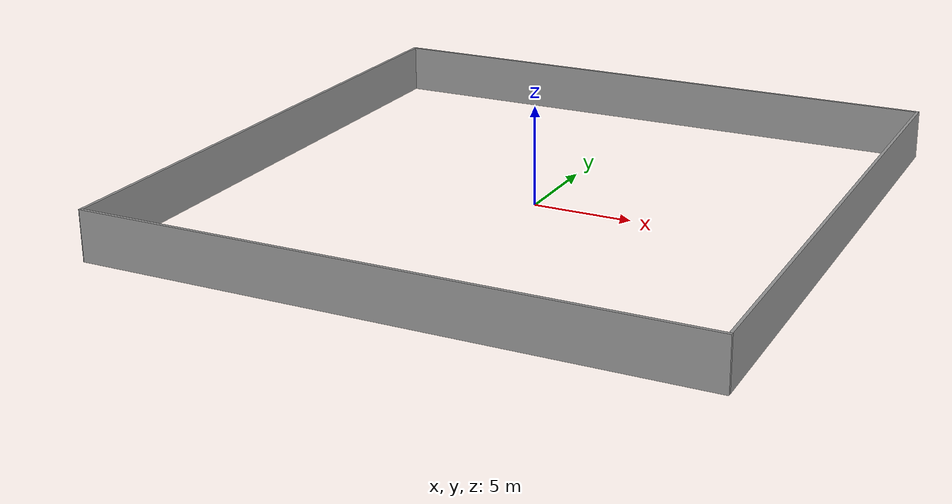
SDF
<?xml version='1.0'?>
<sdf version='1.7'>
  <model name='map'>
    <pose>0 0 0 0 -0 0</pose>
    <link name='Wall_0'>
      <collision name='Wall_0_Collision'>
        <geometry>
          <box>
            <size>30.15 0.15 2.5</size>
          </box>
        </geometry>
        <pose>0 0 1.25 0 -0 0</pose>
      </collision>
      <visual name='Wall_0_Visual'>
        <pose>0 0 1.25 0 -0 0</pose>
        <geometry>
          <box>
            <size>30.15 0.15 2.5</size>
          </box>
        </geometry>
        <material>
          <script>
            <uri>file://media/materials/scripts/gazebo.material</uri>
            <name>Gazebo/Grey</name>
          </script>
          <ambient>1 1 1 1</ambient>
        </material>
        <meta>
          <layer>0</layer>
        </meta>
      </visual>
      <pose>-15 0 0 0 -0 1.5708</pose>
    </link>
    <link name='Wall_1'>
      <collision name='Wall_1_Collision'>
        <geometry>
          <box>
            <size>30.15 0.15 2.5</size>
          </box>
        </geometry>
        <pose>0 0 1.25 0 -0 0</pose>
      </collision>
      <visual name='Wall_1_Visual'>
        <pose>0 0 1.25 0 -0 0</pose>
        <geometry>
          <box>
            <size>30.15 0.15 2.5</size>
          </box>
        </geometry>
        <material>
          <script>
            <uri>file://media/materials/scripts/gazebo.material</uri>
            <name>Gazebo/Grey</name>
          </script>
          <ambient>1 1 1 1</ambient>
        </material>
        <meta>
          <layer>0</layer>
        </meta>
      </visual>
      <pose>0 15 0 0 -0 0</pose>
    </link>
    <link name='Wall_5'>
      <collision name='Wall_5_Collision'>
        <geometry>
          <box>
            <size>30 0.15 2.5</size>
          </box>
        </geometry>
        <pose>0 0 1.25 0 -0 0</pose>
      </collision>
      <visual name='Wall_5_Visual'>
        <pose>0 0 1.25 0 -0 0</pose>
        <geometry>
          <box>
            <size>30 0.15 2.5</size>
          </box>
        </geometry>
        <material>
          <script>
            <uri>file://media/materials/scripts/gazebo.material</uri>
            <name>Gazebo/Grey</name>
          </script>
          <ambient>1 1 1 1</ambient>
        </material>
        <meta>
          <layer>0</layer>
        </meta>
      </visual>
      <pose>15 0.075 0 0 -0 -1.5708</pose>
    </link>
    <link name='Wall_7'>
      <collision name='Wall_7_Collision'>
        <geometry>
          <box>
            <size>30.15 0.15 2.5</size>
          </box>
        </geometry>
        <pose>0 0 1.25 0 -0 0</pose>
      </collision>
      <visual name='Wall_7_Visual'>
        <pose>0 0 1.25 0 -0 0</pose>
        <geometry>
          <box>
            <size>30.15 0.15 2.5</size>
          </box>
        </geometry>
        <material>
          <script>
            <uri>file://media/materials/scripts/gazebo.material</uri>
            <name>Gazebo/Grey</name>
          </script>
          <ambient>1 1 1 1</ambient>
        </material>
        <meta>
          <layer>0</layer>
        </meta>
      </visual>
      <pose>0 -15 0 0 -0 0</pose>
    </link>
    <static>1</static>
  </model>
</sdf>
